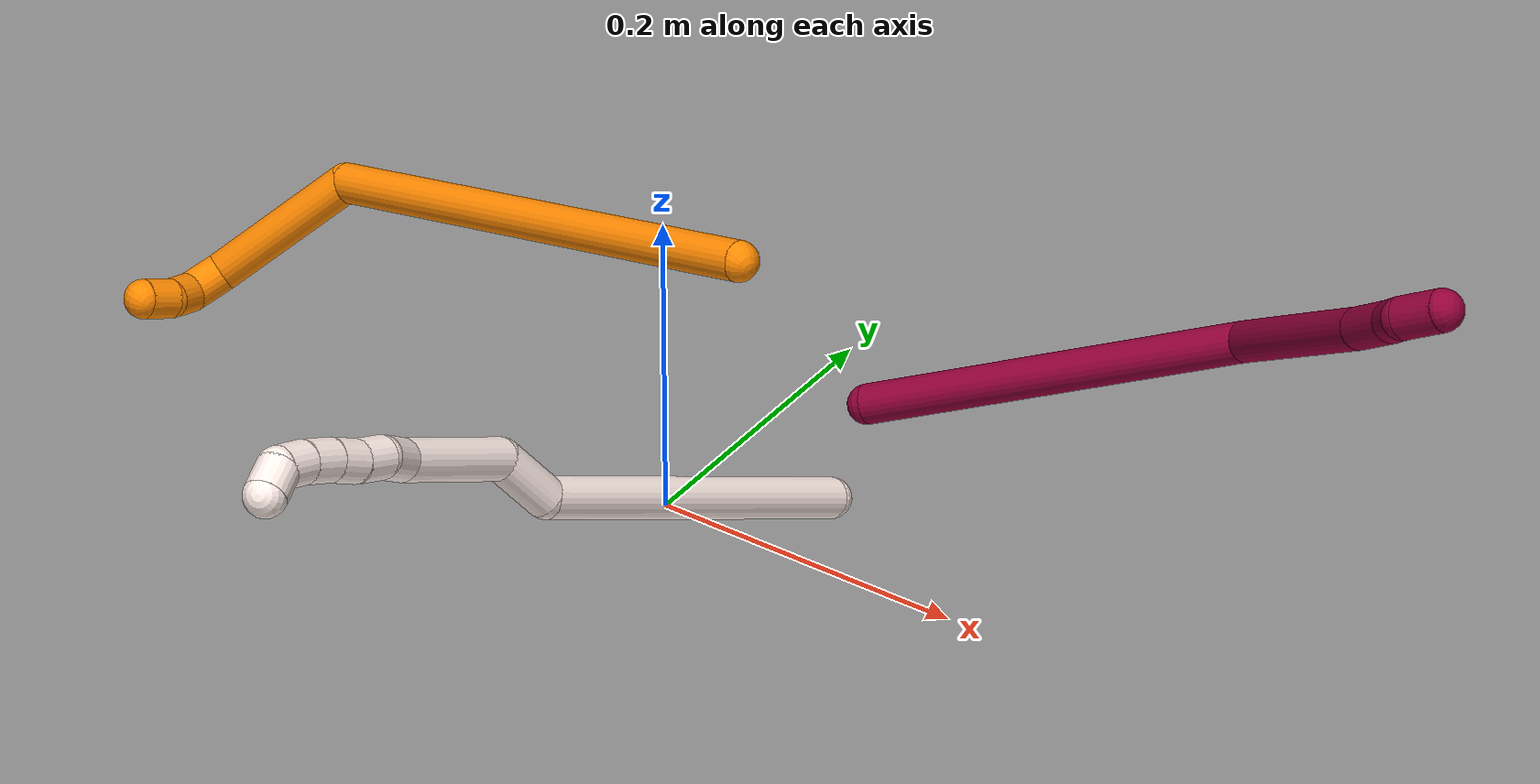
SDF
<sdf version="1.7">
 <world name="default">
  <model name="8">
   <static>0</static>
   <link name="8">
    <collision name="collision-cylinder-e_1_1_4">
     <pose>-6e-06 0.000901 0.127771 -0.007055 -4.8e-05 0</pose>
     <geometry><cylinder><radius>0.0125</radius><length>0.255548</length></cylinder></geometry>
     <surface>
      <friction><ode><mu>1.16</mu><mu2>1.16</mu2><slip1>0</slip1><slip2>0</slip2></ode></friction>
      <contact><ode><kp>1e+06</kp><kd>1</kd><max_vel>0</max_vel><min_depth>0.001</min_depth></ode></contact>
     </surface>
    </collision>
    <visual name="visual-cylinder-e_1_1_4">
     <pose>-6e-06 0.000901 0.127771 -0.007055 -4.8e-05 0</pose>
     <geometry><cylinder><radius>0.0125</radius><length>0.255548</length></cylinder></geometry>
     <material><ambient>0.584314 0 0.227451 1</ambient></material>
    </visual>
    <collision name="collision-cylinder-e_2_4_5">
     <pose>0.02873 0.043196 0.314572 -0.611547 0.379353 -0.121061</pose>
     <geometry><cylinder><radius>0.0125</radius><length>0.155231</length></cylinder></geometry>
     <surface>
      <friction><ode><mu>1.16</mu><mu2>1.16</mu2><slip1>0</slip1><slip2>0</slip2></ode></friction>
      <contact><ode><kp>1e+06</kp><kd>1</kd><max_vel>0</max_vel><min_depth>0.001</min_depth></ode></contact>
     </surface>
    </collision>
    <visual name="visual-cylinder-e_2_4_5">
     <pose>0.02873 0.043196 0.314572 -0.611547 0.379353 -0.121061</pose>
     <geometry><cylinder><radius>0.0125</radius><length>0.155231</length></cylinder></geometry>
     <material><ambient>0.584314 0 0.227451 1</ambient></material>
    </visual>
    <collision name="collision-cylinder-e_3_5_6">
     <pose>0.065328 0.094455 0.389247 -0.562596 0.401658 -0.117514</pose>
     <geometry><cylinder><radius>0.0125</radius><length>0.040188</length></cylinder></geometry>
     <surface>
      <friction><ode><mu>1.16</mu><mu2>1.16</mu2><slip1>0</slip1><slip2>0</slip2></ode></friction>
      <contact><ode><kp>1e+06</kp><kd>1</kd><max_vel>0</max_vel><min_depth>0.001</min_depth></ode></contact>
     </surface>
    </collision>
    <visual name="visual-cylinder-e_3_5_6">
     <pose>0.065328 0.094455 0.389247 -0.562596 0.401658 -0.117514</pose>
     <geometry><cylinder><radius>0.0125</radius><length>0.040188</length></cylinder></geometry>
     <material><ambient>0.584314 0 0.227451 1</ambient></material>
    </visual>
    <collision name="collision-cylinder-e_4_6_7">
     <pose>0.078495 0.110708 0.411516 -0.767205 0.523358 -0.215346</pose>
     <geometry><cylinder><radius>0.0125</radius><length>0.021251</length></cylinder></geometry>
     <surface>
      <friction><ode><mu>1.16</mu><mu2>1.16</mu2><slip1>0</slip1><slip2>0</slip2></ode></friction>
      <contact><ode><kp>1e+06</kp><kd>1</kd><max_vel>0</max_vel><min_depth>0.001</min_depth></ode></contact>
     </surface>
    </collision>
    <visual name="visual-cylinder-e_4_6_7">
     <pose>0.078495 0.110708 0.411516 -0.767205 0.523358 -0.215346</pose>
     <geometry><cylinder><radius>0.0125</radius><length>0.021251</length></cylinder></geometry>
     <material><ambient>0.584314 0 0.227451 1</ambient></material>
    </visual>
    <collision name="collision-cylinder-e_5_7_2">
     <pose>0.085839 0.119442 0.431681 -0.171538 0.146938 -0.012656</pose>
     <geometry><cylinder><radius>0.0125</radius><length>0.027782</length></cylinder></geometry>
     <surface>
      <friction><ode><mu>1.16</mu><mu2>1.16</mu2><slip1>0</slip1><slip2>0</slip2></ode></friction>
      <contact><ode><kp>1e+06</kp><kd>1</kd><max_vel>0</max_vel><min_depth>0.001</min_depth></ode></contact>
     </surface>
    </collision>
    <visual name="visual-cylinder-e_5_7_2">
     <pose>0.085839 0.119442 0.431681 -0.171538 0.146938 -0.012656</pose>
     <geometry><cylinder><radius>0.0125</radius><length>0.027782</length></cylinder></geometry>
     <material><ambient>0.584314 0 0.227451 1</ambient></material>
    </visual>
    <collision name="collision-sphere-2">
     <pose>0.087873 0.121787 0.44522 0 -0 0</pose>
     <geometry><sphere><radius>0.0125</radius></sphere></geometry>
     <surface>
      <friction><ode><mu>1.16</mu><mu2>1.16</mu2><slip1>0</slip1><slip2>0</slip2></ode></friction>
      <contact><ode><kp>1e+06</kp><kd>1</kd><max_vel>0</max_vel><min_depth>0.001</min_depth></ode></contact>
     </surface>
    </collision>
    <visual name="visual-sphere-2">
     <pose>0.087873 0.121787 0.44522 0 -0 0</pose>
     <geometry><sphere><radius>0.0125</radius></sphere></geometry>
     <material><ambient>0.584314 0 0.227451 1</ambient></material>
    </visual>
    <collision name="collision-sphere-7">
     <pose>0.083805 0.117096 0.418141 0 -0 0</pose>
     <geometry><sphere><radius>0.0125</radius></sphere></geometry>
     <surface>
      <friction><ode><mu>1.16</mu><mu2>1.16</mu2><slip1>0</slip1><slip2>0</slip2></ode></friction>
      <contact><ode><kp>1e+06</kp><kd>1</kd><max_vel>0</max_vel><min_depth>0.001</min_depth></ode></contact>
     </surface>
    </collision>
    <visual name="visual-sphere-7">
     <pose>0.083805 0.117096 0.418141 0 -0 0</pose>
     <geometry><sphere><radius>0.0125</radius></sphere></geometry>
     <material><ambient>0.584314 0 0.227451 1</ambient></material>
    </visual>
    <collision name="collision-sphere-6">
     <pose>0.073184 0.10432 0.404891 0 -0 0</pose>
     <geometry><sphere><radius>0.0125</radius></sphere></geometry>
     <surface>
      <friction><ode><mu>1.16</mu><mu2>1.16</mu2><slip1>0</slip1><slip2>0</slip2></ode></friction>
      <contact><ode><kp>1e+06</kp><kd>1</kd><max_vel>0</max_vel><min_depth>0.001</min_depth></ode></contact>
     </surface>
    </collision>
    <visual name="visual-sphere-6">
     <pose>0.073184 0.10432 0.404891 0 -0 0</pose>
     <geometry><sphere><radius>0.0125</radius></sphere></geometry>
     <material><ambient>0.584314 0 0.227451 1</ambient></material>
    </visual>
    <collision name="collision-sphere-5">
     <pose>0.057473 0.08459 0.373602 0 -0 0</pose>
     <geometry><sphere><radius>0.0125</radius></sphere></geometry>
     <surface>
      <friction><ode><mu>1.16</mu><mu2>1.16</mu2><slip1>0</slip1><slip2>0</slip2></ode></friction>
      <contact><ode><kp>1e+06</kp><kd>1</kd><max_vel>0</max_vel><min_depth>0.001</min_depth></ode></contact>
     </surface>
    </collision>
    <visual name="visual-sphere-5">
     <pose>0.057473 0.08459 0.373602 0 -0 0</pose>
     <geometry><sphere><radius>0.0125</radius></sphere></geometry>
     <material><ambient>0.584314 0 0.227451 1</ambient></material>
    </visual>
    <collision name="collision-sphere-1">
     <geometry><sphere><radius>0.0125</radius></sphere></geometry>
     <surface>
      <friction><ode><mu>1.16</mu><mu2>1.16</mu2><slip1>0</slip1><slip2>0</slip2></ode></friction>
      <contact><ode><kp>1e+06</kp><kd>1</kd><max_vel>0</max_vel><min_depth>0.001</min_depth></ode></contact>
     </surface>
    </collision>
    <visual name="visual-sphere-1">
     <geometry><sphere><radius>0.0125</radius></sphere></geometry>
     <material><ambient>0.584314 0 0.227451 1</ambient></material>
    </visual>
    <collision name="collision-sphere-4">
     <pose>-1.2e-05 0.001803 0.255542 0 -0 0</pose>
     <geometry><sphere><radius>0.0125</radius></sphere></geometry>
     <surface>
      <friction><ode><mu>1.16</mu><mu2>1.16</mu2><slip1>0</slip1><slip2>0</slip2></ode></friction>
      <contact><ode><kp>1e+06</kp><kd>1</kd><max_vel>0</max_vel><min_depth>0.001</min_depth></ode></contact>
     </surface>
    </collision>
    <visual name="visual-sphere-4">
     <pose>-1.2e-05 0.001803 0.255542 0 -0 0</pose>
     <geometry><sphere><radius>0.0125</radius></sphere></geometry>
     <material><ambient>0.584314 0 0.227451 1</ambient></material>
    </visual>
    <inertial>
     <pose>0.022273 0.032805 0.235728 0 -0 0</pose>
     <mass>0.5</mass>
     <inertia>
      <ixx>0.001674</ixx>
      <ixy>0</ixy>
      <ixz>0</ixz>
      <iyy>0.00165</iyy>
      <iyz>0</iyz>
      <izz>-0.000271</izz>
     </inertia>
    </inertial>
   </link>
   <pose>0.054873 0.135626 0.017362 -0.330335 -1.12886 -2.54247</pose>
  </model>
  <model name="11">
   <static>0</static>
   <link name="11">
    <collision name="collision-cylinder-e_1_1_4">
     <pose>-0.009062 -0.058035 0.108314 0.491879 -0.073613 -0.018486</pose>
     <geometry><cylinder><radius>0.0125</radius><length>0.246431</length></cylinder></geometry>
     <surface>
      <friction><ode><mu>1.16</mu><mu2>1.16</mu2><slip1>0</slip1><slip2>0</slip2></ode></friction>
      <contact><ode><kp>1e+06</kp><kd>1</kd><max_vel>0</max_vel><min_depth>0.001</min_depth></ode></contact>
     </surface>
    </collision>
    <visual name="visual-cylinder-e_1_1_4">
     <pose>-0.009062 -0.058035 0.108314 0.491879 -0.073613 -0.018486</pose>
     <geometry><cylinder><radius>0.0125</radius><length>0.246431</length></cylinder></geometry>
     <material><ambient>1 0.933333 0.909804 1</ambient></material>
    </visual>
    <collision name="collision-cylinder-e_2_4_5">
     <pose>-0.030015 -0.122404 0.233012 0.368872 -0.595071 -0.114286</pose>
     <geometry><cylinder><radius>0.0125</radius><length>0.042424</length></cylinder></geometry>
     <surface>
      <friction><ode><mu>1.16</mu><mu2>1.16</mu2><slip1>0</slip1><slip2>0</slip2></ode></friction>
      <contact><ode><kp>1e+06</kp><kd>1</kd><max_vel>0</max_vel><min_depth>0.001</min_depth></ode></contact>
     </surface>
    </collision>
    <visual name="visual-cylinder-e_2_4_5">
     <pose>-0.030015 -0.122404 0.233012 0.368872 -0.595071 -0.114286</pose>
     <geometry><cylinder><radius>0.0125</radius><length>0.042424</length></cylinder></geometry>
     <material><ambient>1 0.933333 0.909804 1</ambient></material>
    </visual>
    <collision name="collision-cylinder-e_3_5_6">
     <pose>-0.043909 -0.146167 0.287662 0.427425 -0.047603 -0.010333</pose>
     <geometry><cylinder><radius>0.0125</radius><length>0.084192</length></cylinder></geometry>
     <surface>
      <friction><ode><mu>1.16</mu><mu2>1.16</mu2><slip1>0</slip1><slip2>0</slip2></ode></friction>
      <contact><ode><kp>1e+06</kp><kd>1</kd><max_vel>0</max_vel><min_depth>0.001</min_depth></ode></contact>
     </surface>
    </collision>
    <visual name="visual-cylinder-e_3_5_6">
     <pose>-0.043909 -0.146167 0.287662 0.427425 -0.047603 -0.010333</pose>
     <geometry><cylinder><radius>0.0125</radius><length>0.084192</length></cylinder></geometry>
     <material><ambient>1 0.933333 0.909804 1</ambient></material>
    </visual>
    <collision name="collision-cylinder-e_4_6_7">
     <pose>-0.046578 -0.165401 0.338147 0.146481 -0.053874 -0.003954</pose>
     <geometry><cylinder><radius>0.0125</radius><length>0.02474</length></cylinder></geometry>
     <surface>
      <friction><ode><mu>1.16</mu><mu2>1.16</mu2><slip1>0</slip1><slip2>0</slip2></ode></friction>
      <contact><ode><kp>1e+06</kp><kd>1</kd><max_vel>0</max_vel><min_depth>0.001</min_depth></ode></contact>
     </surface>
    </collision>
    <visual name="visual-cylinder-e_4_6_7">
     <pose>-0.046578 -0.165401 0.338147 0.146481 -0.053874 -0.003954</pose>
     <geometry><cylinder><radius>0.0125</radius><length>0.02474</length></cylinder></geometry>
     <material><ambient>1 0.933333 0.909804 1</ambient></material>
    </visual>
    <collision name="collision-cylinder-e_5_7_8">
     <pose>-0.046736 -0.171966 0.359472 0.481931 0.049385 0.012138</pose>
     <geometry><cylinder><radius>0.0125</radius><length>0.020575</length></cylinder></geometry>
     <surface>
      <friction><ode><mu>1.16</mu><mu2>1.16</mu2><slip1>0</slip1><slip2>0</slip2></ode></friction>
      <contact><ode><kp>1e+06</kp><kd>1</kd><max_vel>0</max_vel><min_depth>0.001</min_depth></ode></contact>
     </surface>
    </collision>
    <visual name="visual-cylinder-e_5_7_8">
     <pose>-0.046736 -0.171966 0.359472 0.481931 0.049385 0.012138</pose>
     <geometry><cylinder><radius>0.0125</radius><length>0.020575</length></cylinder></geometry>
     <material><ambient>1 0.933333 0.909804 1</ambient></material>
    </visual>
    <collision name="collision-cylinder-e_6_8_9">
     <pose>-0.047232 -0.181087 0.377635 0.448484 -0.099499 -0.022711</pose>
     <geometry><cylinder><radius>0.0125</radius><length>0.020205</length></cylinder></geometry>
     <surface>
      <friction><ode><mu>1.16</mu><mu2>1.16</mu2><slip1>0</slip1><slip2>0</slip2></ode></friction>
      <contact><ode><kp>1e+06</kp><kd>1</kd><max_vel>0</max_vel><min_depth>0.001</min_depth></ode></contact>
     </surface>
    </collision>
    <visual name="visual-cylinder-e_6_8_9">
     <pose>-0.047232 -0.181087 0.377635 0.448484 -0.099499 -0.022711</pose>
     <geometry><cylinder><radius>0.0125</radius><length>0.020205</length></cylinder></geometry>
     <material><ambient>1 0.933333 0.909804 1</ambient></material>
    </visual>
    <collision name="collision-cylinder-e_7_9_10">
     <pose>-0.048287 -0.190181 0.396296 0.458102 -0.004841 -0.001129</pose>
     <geometry><cylinder><radius>0.0125</radius><length>0.021414</length></cylinder></geometry>
     <surface>
      <friction><ode><mu>1.16</mu><mu2>1.16</mu2><slip1>0</slip1><slip2>0</slip2></ode></friction>
      <contact><ode><kp>1e+06</kp><kd>1</kd><max_vel>0</max_vel><min_depth>0.001</min_depth></ode></contact>
     </surface>
    </collision>
    <visual name="visual-cylinder-e_7_9_10">
     <pose>-0.048287 -0.190181 0.396296 0.458102 -0.004841 -0.001129</pose>
     <geometry><cylinder><radius>0.0125</radius><length>0.021414</length></cylinder></geometry>
     <material><ambient>1 0.933333 0.909804 1</ambient></material>
    </visual>
    <collision name="collision-cylinder-e_8_10_11">
     <pose>-0.047336 -0.199276 0.414845 0.453536 0.100459 0.023198</pose>
     <geometry><cylinder><radius>0.0125</radius><length>0.020004</length></cylinder></geometry>
     <surface>
      <friction><ode><mu>1.16</mu><mu2>1.16</mu2><slip1>0</slip1><slip2>0</slip2></ode></friction>
      <contact><ode><kp>1e+06</kp><kd>1</kd><max_vel>0</max_vel><min_depth>0.001</min_depth></ode></contact>
     </surface>
    </collision>
    <visual name="visual-cylinder-e_8_10_11">
     <pose>-0.047336 -0.199276 0.414845 0.453536 0.100459 0.023198</pose>
     <geometry><cylinder><radius>0.0125</radius><length>0.020004</length></cylinder></geometry>
     <material><ambient>1 0.933333 0.909804 1</ambient></material>
    </visual>
    <collision name="collision-cylinder-e_9_11_2">
     <pose>-0.039223 -0.206858 0.430052 0.475168 0.79016 0.20128</pose>
     <geometry><cylinder><radius>0.0125</radius><length>0.020015</length></cylinder></geometry>
     <surface>
      <friction><ode><mu>1.16</mu><mu2>1.16</mu2><slip1>0</slip1><slip2>0</slip2></ode></friction>
      <contact><ode><kp>1e+06</kp><kd>1</kd><max_vel>0</max_vel><min_depth>0.001</min_depth></ode></contact>
     </surface>
    </collision>
    <visual name="visual-cylinder-e_9_11_2">
     <pose>-0.039223 -0.206858 0.430052 0.475168 0.79016 0.20128</pose>
     <geometry><cylinder><radius>0.0125</radius><length>0.020015</length></cylinder></geometry>
     <material><ambient>1 0.933333 0.909804 1</ambient></material>
    </visual>
    <collision name="collision-sphere-2">
     <pose>-0.032113 -0.21008 0.436315 0 -0 0</pose>
     <geometry><sphere><radius>0.0125</radius></sphere></geometry>
     <surface>
      <friction><ode><mu>1.16</mu><mu2>1.16</mu2><slip1>0</slip1><slip2>0</slip2></ode></friction>
      <contact><ode><kp>1e+06</kp><kd>1</kd><max_vel>0</max_vel><min_depth>0.001</min_depth></ode></contact>
     </surface>
    </collision>
    <visual name="visual-sphere-2">
     <pose>-0.032113 -0.21008 0.436315 0 -0 0</pose>
     <geometry><sphere><radius>0.0125</radius></sphere></geometry>
     <material><ambient>1 0.933333 0.909804 1</ambient></material>
    </visual>
    <collision name="collision-sphere-11">
     <pose>-0.046333 -0.203636 0.42379 0 -0 0</pose>
     <geometry><sphere><radius>0.0125</radius></sphere></geometry>
     <surface>
      <friction><ode><mu>1.16</mu><mu2>1.16</mu2><slip1>0</slip1><slip2>0</slip2></ode></friction>
      <contact><ode><kp>1e+06</kp><kd>1</kd><max_vel>0</max_vel><min_depth>0.001</min_depth></ode></contact>
     </surface>
    </collision>
    <visual name="visual-sphere-11">
     <pose>-0.046333 -0.203636 0.42379 0 -0 0</pose>
     <geometry><sphere><radius>0.0125</radius></sphere></geometry>
     <material><ambient>1 0.933333 0.909804 1</ambient></material>
    </visual>
    <collision name="collision-sphere-10">
     <pose>-0.048339 -0.194916 0.405899 0 -0 0</pose>
     <geometry><sphere><radius>0.0125</radius></sphere></geometry>
     <surface>
      <friction><ode><mu>1.16</mu><mu2>1.16</mu2><slip1>0</slip1><slip2>0</slip2></ode></friction>
      <contact><ode><kp>1e+06</kp><kd>1</kd><max_vel>0</max_vel><min_depth>0.001</min_depth></ode></contact>
     </surface>
    </collision>
    <visual name="visual-sphere-10">
     <pose>-0.048339 -0.194916 0.405899 0 -0 0</pose>
     <geometry><sphere><radius>0.0125</radius></sphere></geometry>
     <material><ambient>1 0.933333 0.909804 1</ambient></material>
    </visual>
    <collision name="collision-sphere-9">
     <pose>-0.048235 -0.185446 0.386693 0 -0 0</pose>
     <geometry><sphere><radius>0.0125</radius></sphere></geometry>
     <surface>
      <friction><ode><mu>1.16</mu><mu2>1.16</mu2><slip1>0</slip1><slip2>0</slip2></ode></friction>
      <contact><ode><kp>1e+06</kp><kd>1</kd><max_vel>0</max_vel><min_depth>0.001</min_depth></ode></contact>
     </surface>
    </collision>
    <visual name="visual-sphere-9">
     <pose>-0.048235 -0.185446 0.386693 0 -0 0</pose>
     <geometry><sphere><radius>0.0125</radius></sphere></geometry>
     <material><ambient>1 0.933333 0.909804 1</ambient></material>
    </visual>
    <collision name="collision-sphere-4">
     <pose>-0.018124 -0.11607 0.216628 0 -0 0</pose>
     <geometry><sphere><radius>0.0125</radius></sphere></geometry>
     <surface>
      <friction><ode><mu>1.16</mu><mu2>1.16</mu2><slip1>0</slip1><slip2>0</slip2></ode></friction>
      <contact><ode><kp>1e+06</kp><kd>1</kd><max_vel>0</max_vel><min_depth>0.001</min_depth></ode></contact>
     </surface>
    </collision>
    <visual name="visual-sphere-4">
     <pose>-0.018124 -0.11607 0.216628 0 -0 0</pose>
     <geometry><sphere><radius>0.0125</radius></sphere></geometry>
     <material><ambient>1 0.933333 0.909804 1</ambient></material>
    </visual>
    <collision name="collision-sphere-1">
     <geometry><sphere><radius>0.0125</radius></sphere></geometry>
     <surface>
      <friction><ode><mu>1.16</mu><mu2>1.16</mu2><slip1>0</slip1><slip2>0</slip2></ode></friction>
      <contact><ode><kp>1e+06</kp><kd>1</kd><max_vel>0</max_vel><min_depth>0.001</min_depth></ode></contact>
     </surface>
    </collision>
    <visual name="visual-sphere-1">
     <geometry><sphere><radius>0.0125</radius></sphere></geometry>
     <material><ambient>1 0.933333 0.909804 1</ambient></material>
    </visual>
    <collision name="collision-sphere-8">
     <pose>-0.046228 -0.176728 0.368577 0 -0 0</pose>
     <geometry><sphere><radius>0.0125</radius></sphere></geometry>
     <surface>
      <friction><ode><mu>1.16</mu><mu2>1.16</mu2><slip1>0</slip1><slip2>0</slip2></ode></friction>
      <contact><ode><kp>1e+06</kp><kd>1</kd><max_vel>0</max_vel><min_depth>0.001</min_depth></ode></contact>
     </surface>
    </collision>
    <visual name="visual-sphere-8">
     <pose>-0.046228 -0.176728 0.368577 0 -0 0</pose>
     <geometry><sphere><radius>0.0125</radius></sphere></geometry>
     <material><ambient>1 0.933333 0.909804 1</ambient></material>
    </visual>
    <collision name="collision-sphere-5">
     <pose>-0.041906 -0.128737 0.249396 0 -0 0</pose>
     <geometry><sphere><radius>0.0125</radius></sphere></geometry>
     <surface>
      <friction><ode><mu>1.16</mu><mu2>1.16</mu2><slip1>0</slip1><slip2>0</slip2></ode></friction>
      <contact><ode><kp>1e+06</kp><kd>1</kd><max_vel>0</max_vel><min_depth>0.001</min_depth></ode></contact>
     </surface>
    </collision>
    <visual name="visual-sphere-5">
     <pose>-0.041906 -0.128737 0.249396 0 -0 0</pose>
     <geometry><sphere><radius>0.0125</radius></sphere></geometry>
     <material><ambient>1 0.933333 0.909804 1</ambient></material>
    </visual>
    <collision name="collision-sphere-6">
     <pose>-0.045912 -0.163598 0.325927 0 -0 0</pose>
     <geometry><sphere><radius>0.0125</radius></sphere></geometry>
     <surface>
      <friction><ode><mu>1.16</mu><mu2>1.16</mu2><slip1>0</slip1><slip2>0</slip2></ode></friction>
      <contact><ode><kp>1e+06</kp><kd>1</kd><max_vel>0</max_vel><min_depth>0.001</min_depth></ode></contact>
     </surface>
    </collision>
    <visual name="visual-sphere-6">
     <pose>-0.045912 -0.163598 0.325927 0 -0 0</pose>
     <geometry><sphere><radius>0.0125</radius></sphere></geometry>
     <material><ambient>1 0.933333 0.909804 1</ambient></material>
    </visual>
    <collision name="collision-sphere-7">
     <pose>-0.047244 -0.167203 0.350367 0 -0 0</pose>
     <geometry><sphere><radius>0.0125</radius></sphere></geometry>
     <surface>
      <friction><ode><mu>1.16</mu><mu2>1.16</mu2><slip1>0</slip1><slip2>0</slip2></ode></friction>
      <contact><ode><kp>1e+06</kp><kd>1</kd><max_vel>0</max_vel><min_depth>0.001</min_depth></ode></contact>
     </surface>
    </collision>
    <visual name="visual-sphere-7">
     <pose>-0.047244 -0.167203 0.350367 0 -0 0</pose>
     <geometry><sphere><radius>0.0125</radius></sphere></geometry>
     <material><ambient>1 0.933333 0.909804 1</ambient></material>
    </visual>
    <inertial>
     <pose>-0.026075 -0.110578 0.219161 0 -0 0</pose>
     <mass>0.5</mass>
     <inertia>
      <ixx>0.001295</ixx>
      <ixy>0</ixy>
      <ixz>0</ixz>
      <iyy>0.001133</iyy>
      <iyz>0</iyz>
      <izz>0.000752</izz>
     </inertia>
    </inertial>
   </link>
   <pose>0.086106 0.04878 0.011606 0.468325 0.836269 -0.660929</pose>
  </model>
  <model name="19">
   <static>0</static>
   <link name="19">
    <collision name="collision-cylinder-e_1_1_4">
     <pose>-0.051325 -0.020544 0.15547 0.131381 -0.316295 -0.020982</pose>
     <geometry><cylinder><radius>0.0125</radius><length>0.330014</length></cylinder></geometry>
     <surface>
      <friction><ode><mu>1.16</mu><mu2>1.16</mu2><slip1>0</slip1><slip2>0</slip2></ode></friction>
      <contact><ode><kp>1e+06</kp><kd>1</kd><max_vel>0</max_vel><min_depth>0.001</min_depth></ode></contact>
     </surface>
    </collision>
    <visual name="visual-cylinder-e_1_1_4">
     <pose>-0.051325 -0.020544 0.15547 0.131381 -0.316295 -0.020982</pose>
     <geometry><cylinder><radius>0.0125</radius><length>0.330014</length></cylinder></geometry>
     <material><ambient>0.996078 0.537255 0 1</ambient></material>
    </visual>
    <collision name="collision-cylinder-e_2_4_5">
     <pose>-0.148209 -0.051074 0.334771 0.396817 -1.05489 -0.233162</pose>
     <geometry><cylinder><radius>0.0125</radius><length>0.104752</length></cylinder></geometry>
     <surface>
      <friction><ode><mu>1.16</mu><mu2>1.16</mu2><slip1>0</slip1><slip2>0</slip2></ode></friction>
      <contact><ode><kp>1e+06</kp><kd>1</kd><max_vel>0</max_vel><min_depth>0.001</min_depth></ode></contact>
     </surface>
    </collision>
    <visual name="visual-cylinder-e_2_4_5">
     <pose>-0.148209 -0.051074 0.334771 0.396817 -1.05489 -0.233162</pose>
     <geometry><cylinder><radius>0.0125</radius><length>0.104752</length></cylinder></geometry>
     <material><ambient>0.996078 0.537255 0 1</ambient></material>
    </visual>
    <collision name="collision-cylinder-e_3_5_6">
     <pose>-0.202719 -0.069243 0.357689 1.6818 -0.827151 -0.912078</pose>
     <geometry><cylinder><radius>0.0125</radius><length>0.024323</length></cylinder></geometry>
     <surface>
      <friction><ode><mu>1.16</mu><mu2>1.16</mu2><slip1>0</slip1><slip2>0</slip2></ode></friction>
      <contact><ode><kp>1e+06</kp><kd>1</kd><max_vel>0</max_vel><min_depth>0.001</min_depth></ode></contact>
     </surface>
    </collision>
    <visual name="visual-cylinder-e_3_5_6">
     <pose>-0.202719 -0.069243 0.357689 1.6818 -0.827151 -0.912078</pose>
     <geometry><cylinder><radius>0.0125</radius><length>0.024323</length></cylinder></geometry>
     <material><ambient>0.996078 0.537255 0 1</ambient></material>
    </visual>
    <collision name="collision-cylinder-e_4_6_7">
     <pose>-0.21425 -0.086298 0.352759 1.99603 -0.258957 -0.39845</pose>
     <geometry><cylinder><radius>0.0125</radius><length>0.020154</length></cylinder></geometry>
     <surface>
      <friction><ode><mu>1.16</mu><mu2>1.16</mu2><slip1>0</slip1><slip2>0</slip2></ode></friction>
      <contact><ode><kp>1e+06</kp><kd>1</kd><max_vel>0</max_vel><min_depth>0.001</min_depth></ode></contact>
     </surface>
    </collision>
    <visual name="visual-cylinder-e_4_6_7">
     <pose>-0.21425 -0.086298 0.352759 1.99603 -0.258957 -0.39845</pose>
     <geometry><cylinder><radius>0.0125</radius><length>0.020154</length></cylinder></geometry>
     <material><ambient>0.996078 0.537255 0 1</ambient></material>
    </visual>
    <collision name="collision-cylinder-e_5_7_2">
     <pose>-0.219327 -0.105217 0.34798 1.6463 -0.242873 -0.261732</pose>
     <geometry><cylinder><radius>0.0125</radius><length>0.020758</length></cylinder></geometry>
     <surface>
      <friction><ode><mu>1.16</mu><mu2>1.16</mu2><slip1>0</slip1><slip2>0</slip2></ode></friction>
      <contact><ode><kp>1e+06</kp><kd>1</kd><max_vel>0</max_vel><min_depth>0.001</min_depth></ode></contact>
     </surface>
    </collision>
    <visual name="visual-cylinder-e_5_7_2">
     <pose>-0.219327 -0.105217 0.34798 1.6463 -0.242873 -0.261732</pose>
     <geometry><cylinder><radius>0.0125</radius><length>0.020758</length></cylinder></geometry>
     <material><ambient>0.996078 0.537255 0 1</ambient></material>
    </visual>
    <collision name="collision-sphere-2">
     <pose>-0.221823 -0.115263 0.34722 0 -0 0</pose>
     <geometry><sphere><radius>0.0125</radius></sphere></geometry>
     <surface>
      <friction><ode><mu>1.16</mu><mu2>1.16</mu2><slip1>0</slip1><slip2>0</slip2></ode></friction>
      <contact><ode><kp>1e+06</kp><kd>1</kd><max_vel>0</max_vel><min_depth>0.001</min_depth></ode></contact>
     </surface>
    </collision>
    <visual name="visual-sphere-2">
     <pose>-0.221823 -0.115263 0.34722 0 -0 0</pose>
     <geometry><sphere><radius>0.0125</radius></sphere></geometry>
     <material><ambient>0.996078 0.537255 0 1</ambient></material>
    </visual>
    <collision name="collision-sphere-7">
     <pose>-0.216831 -0.095172 0.34874 0 -0 0</pose>
     <geometry><sphere><radius>0.0125</radius></sphere></geometry>
     <surface>
      <friction><ode><mu>1.16</mu><mu2>1.16</mu2><slip1>0</slip1><slip2>0</slip2></ode></friction>
      <contact><ode><kp>1e+06</kp><kd>1</kd><max_vel>0</max_vel><min_depth>0.001</min_depth></ode></contact>
     </surface>
    </collision>
    <visual name="visual-sphere-7">
     <pose>-0.216831 -0.095172 0.34874 0 -0 0</pose>
     <geometry><sphere><radius>0.0125</radius></sphere></geometry>
     <material><ambient>0.996078 0.537255 0 1</ambient></material>
    </visual>
    <collision name="collision-sphere-6">
     <pose>-0.21167 -0.077425 0.356777 0 -0 0</pose>
     <geometry><sphere><radius>0.0125</radius></sphere></geometry>
     <surface>
      <friction><ode><mu>1.16</mu><mu2>1.16</mu2><slip1>0</slip1><slip2>0</slip2></ode></friction>
      <contact><ode><kp>1e+06</kp><kd>1</kd><max_vel>0</max_vel><min_depth>0.001</min_depth></ode></contact>
     </surface>
    </collision>
    <visual name="visual-sphere-6">
     <pose>-0.21167 -0.077425 0.356777 0 -0 0</pose>
     <geometry><sphere><radius>0.0125</radius></sphere></geometry>
     <material><ambient>0.996078 0.537255 0 1</ambient></material>
    </visual>
    <collision name="collision-sphere-5">
     <pose>-0.193768 -0.06106 0.358601 0 -0 0</pose>
     <geometry><sphere><radius>0.0125</radius></sphere></geometry>
     <surface>
      <friction><ode><mu>1.16</mu><mu2>1.16</mu2><slip1>0</slip1><slip2>0</slip2></ode></friction>
      <contact><ode><kp>1e+06</kp><kd>1</kd><max_vel>0</max_vel><min_depth>0.001</min_depth></ode></contact>
     </surface>
    </collision>
    <visual name="visual-sphere-5">
     <pose>-0.193768 -0.06106 0.358601 0 -0 0</pose>
     <geometry><sphere><radius>0.0125</radius></sphere></geometry>
     <material><ambient>0.996078 0.537255 0 1</ambient></material>
    </visual>
    <collision name="collision-sphere-1">
     <geometry><sphere><radius>0.0125</radius></sphere></geometry>
     <surface>
      <friction><ode><mu>1.16</mu><mu2>1.16</mu2><slip1>0</slip1><slip2>0</slip2></ode></friction>
      <contact><ode><kp>1e+06</kp><kd>1</kd><max_vel>0</max_vel><min_depth>0.001</min_depth></ode></contact>
     </surface>
    </collision>
    <visual name="visual-sphere-1">
     <geometry><sphere><radius>0.0125</radius></sphere></geometry>
     <material><ambient>0.996078 0.537255 0 1</ambient></material>
    </visual>
    <collision name="collision-sphere-4">
     <pose>-0.10265 -0.041088 0.31094 0 -0 0</pose>
     <geometry><sphere><radius>0.0125</radius></sphere></geometry>
     <surface>
      <friction><ode><mu>1.16</mu><mu2>1.16</mu2><slip1>0</slip1><slip2>0</slip2></ode></friction>
      <contact><ode><kp>1e+06</kp><kd>1</kd><max_vel>0</max_vel><min_depth>0.001</min_depth></ode></contact>
     </surface>
    </collision>
    <visual name="visual-sphere-4">
     <pose>-0.10265 -0.041088 0.31094 0 -0 0</pose>
     <geometry><sphere><radius>0.0125</radius></sphere></geometry>
     <material><ambient>0.996078 0.537255 0 1</ambient></material>
    </visual>
    <inertial>
     <pose>-0.092529 -0.035475 0.218816 0 -0 0</pose>
     <mass>0.5</mass>
     <inertia><ixx>0.002819</ixx><ixy>0</ixy><ixz>0</ixz><iyy>0.003</iyy><iyz>0</iyz><izz>0.00145</izz></inertia>
    </inertial>
   </link>
   <pose>0.025503 0.040537 0.16224 -1.66728 -0.971819 1.25337</pose>
  </model>
 </world>
</sdf>
